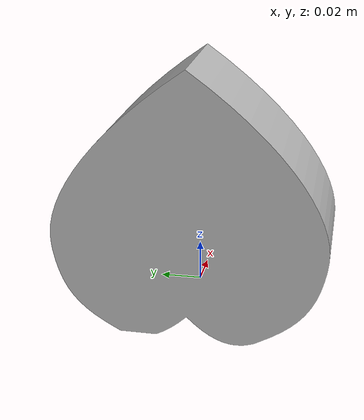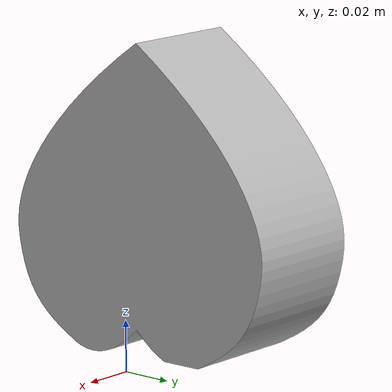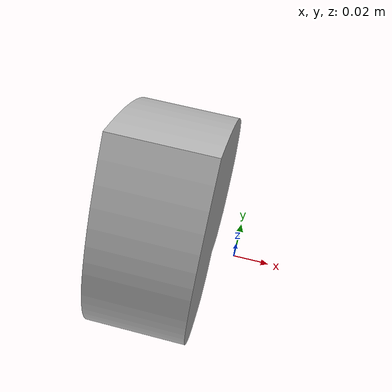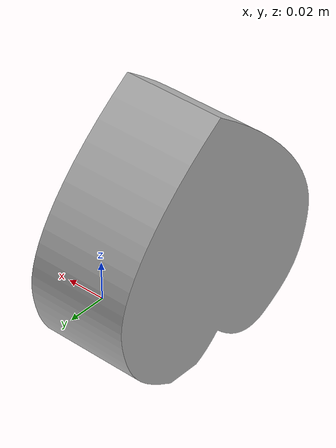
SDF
<?xml version="1.0" ?>
<sdf version="1.5">
  <model name="om">
    <static>true</static>
    <link name="link">
      <pose>-0.0623 -0.0686 0  1.570796  0 1.570796</pose>
      <collision name="collision">
        <geometry>
          <mesh>
            <uri>/home/well/graspit/models/objects/test2_model/1.stl</uri>
            <scale>0.001 0.001 0.001</scale>
          </mesh>
        </geometry>
      </collision>
      <visual name="visual">
        <geometry>
          <mesh>
            <uri>/home/well/graspit/models/objects/test2_model/1.stl</uri>
            <scale>0.001 0.001 0.001</scale>
          </mesh>
        </geometry>
      </visual>
    </link>
  </model>
</sdf>
